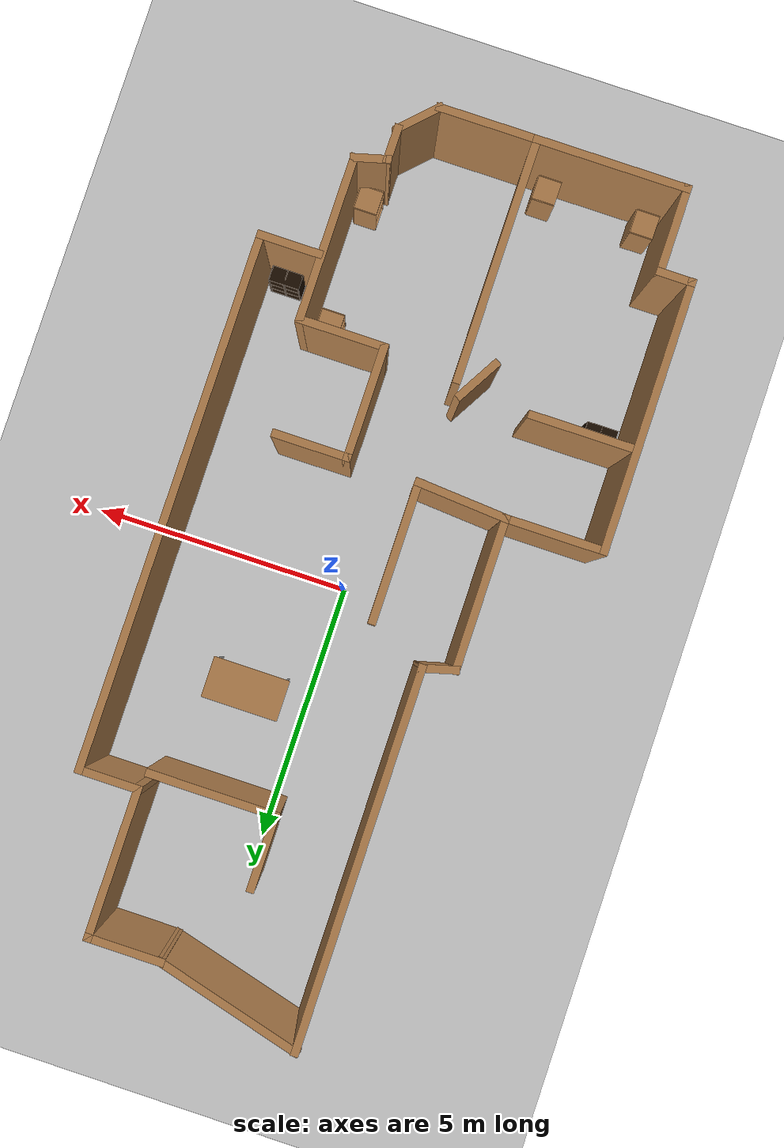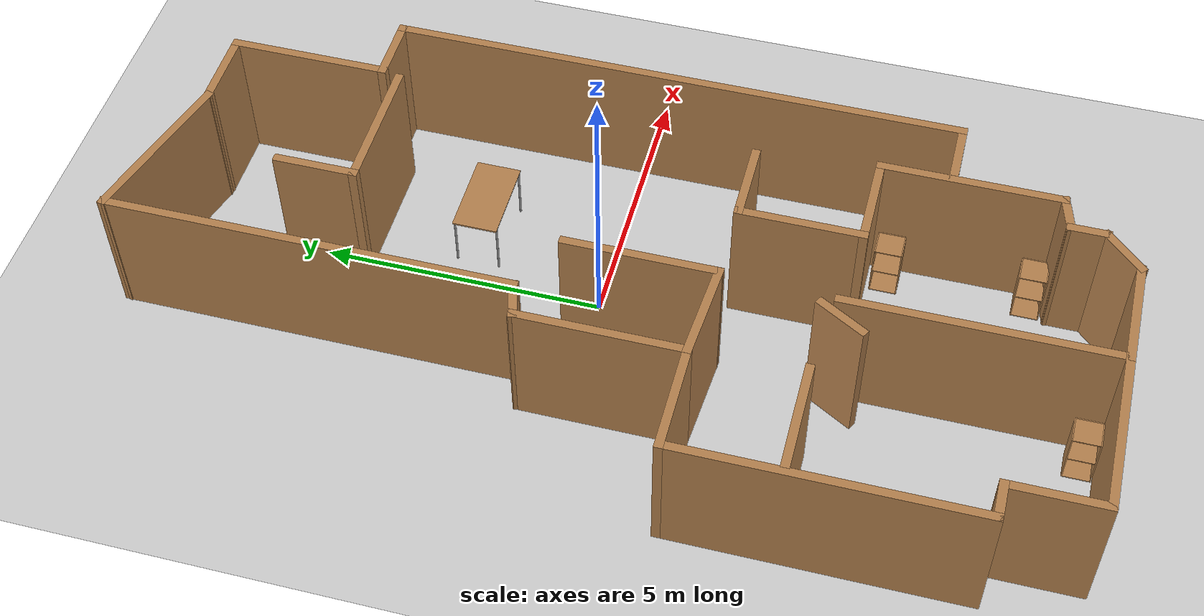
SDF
<sdf version="1.6">
 <world name="default">
  <light name="sun" type="directional">
   <pose>0 0 10 0 -0 0</pose>
   <diffuse>0.8 0.8 0.8 1</diffuse>
   <specular>0.2 0.2 0.2 1</specular>
   <attenuation>
    <range>1000</range>
    <constant>0.9</constant>
    <linear>0.01</linear>
    <quadratic>0.001</quadratic>
   </attenuation>
   <direction>-0.5 0.1 -0.9</direction>
  </light>
  <model name="ground_plane">
   <static>1</static>
   <link name="link">
    <collision name="collision">
     <geometry><plane><normal>0 0 1</normal><size>100 100</size></plane></geometry>
     <surface>
      <contact><collide_bitmask>65535</collide_bitmask></contact>
      <friction><ode><mu>100</mu><mu2>50</mu2></ode></friction>
     </surface>
    </collision>
    <visual name="visual">
     <cast_shadows>0</cast_shadows>
     <geometry><plane><normal>0 0 1</normal><size>100 100</size></plane></geometry>
     <material>
      <script><uri>file://media/materials/scripts/gazebo.material</uri><name>Gazebo/Grey</name></script>
     </material>
    </visual>
   </link>
  </model>
  <gravity>0 0 -9.8</gravity>
  <magnetic_field>6e-06 2.3e-05 -4.2e-05</magnetic_field>
  <atmosphere type="adiabatic"/>
  <physics name="default_physics" default="0" type="ode">
   <max_step_size>0.001</max_step_size>
   <real_time_factor>1</real_time_factor>
   <real_time_update_rate>1000</real_time_update_rate>
  </physics>
  <scene><ambient>0.4 0.4 0.4 1</ambient><background>0.7 0.7 0.7 1</background><shadows>1</shadows></scene>
  <audio><device>default</device></audio>
  <spherical_coordinates>
   <surface_model>EARTH_WGS84</surface_model>
   <latitude_deg>0</latitude_deg>
   <longitude_deg>0</longitude_deg>
   <elevation>0</elevation>
   <heading_deg>0</heading_deg>
  </spherical_coordinates>
  <model name="map_43">
   <pose>-0.422453 -0.385231 0 0 -0 0</pose>
   <link name="Wall_10">
    <collision name="Wall_10_Collision">
     <geometry><box><size>1.75 0.15 2.5</size></box></geometry>
     <pose>0 0 1.25 0 -0 0</pose>
    </collision>
    <visual name="Wall_10_Visual">
     <pose>0 0 1.25 0 -0 0</pose>
     <geometry><box><size>1.75 0.15 2.5</size></box></geometry>
     <material>
      <script><uri>file://media/materials/scripts/gazebo.material</uri><name>Gazebo/Wood</name></script>
      <ambient>1 1 1 1</ambient>
     </material>
     <meta><layer>0</layer></meta>
    </visual>
    <pose>-3.21622 -7.59554 0 0 -0 -1.5708</pose>
   </link>
   <link name="Wall_11">
    <collision name="Wall_11_Collision">
     <geometry><box><size>3 0.15 2.5</size></box></geometry>
     <pose>0 0 1.25 0 -0 0</pose>
    </collision>
    <visual name="Wall_11_Visual">
     <pose>0 0 1.25 0 -0 0</pose>
     <geometry><box><size>3 0.15 2.5</size></box></geometry>
     <material>
      <script><uri>file://media/materials/scripts/gazebo.material</uri><name>Gazebo/Wood</name></script>
      <ambient>1 1 1 1</ambient>
     </material>
     <meta><layer>0</layer></meta>
    </visual>
    <pose>-1.79122 -8.39554 0 0 -0 0</pose>
   </link>
   <link name="Wall_12">
    <collision name="Wall_12_Collision">
     <geometry><box><size>4.75 0.15 2.5</size></box></geometry>
     <pose>0 0 1.25 0 -0 0</pose>
    </collision>
    <visual name="Wall_12_Visual">
     <pose>0 0 1.25 0 -0 0</pose>
     <geometry><box><size>4.75 0.15 2.5</size></box></geometry>
     <material>
      <script><uri>file://media/materials/scripts/gazebo.material</uri><name>Gazebo/Wood</name></script>
      <ambient>1 1 1 1</ambient>
     </material>
     <meta><layer>0</layer></meta>
    </visual>
    <pose>-0.366222 -6.09554 0 0 -0 1.5708</pose>
   </link>
   <link name="Wall_14">
    <collision name="Wall_14_Collision">
     <geometry><box><size>2 0.15 2.5</size></box></geometry>
     <pose>0 0 1.25 0 -0 0</pose>
    </collision>
    <visual name="Wall_14_Visual">
     <pose>0 0 1.25 0 -0 0</pose>
     <geometry><box><size>2 0.15 2.5</size></box></geometry>
     <material>
      <script><uri>file://media/materials/scripts/gazebo.material</uri><name>Gazebo/Wood</name></script>
      <ambient>1 1 1 1</ambient>
     </material>
     <meta><layer>0</layer></meta>
    </visual>
    <pose>0.558778 -8.39554 0 0 -0 0</pose>
   </link>
   <link name="Wall_15">
    <collision name="Wall_15_Collision">
     <geometry><box><size>1 0.15 2.5</size></box></geometry>
     <pose>0 0 1.25 0 -0 0</pose>
    </collision>
    <visual name="Wall_15_Visual">
     <pose>0 0 1.25 0 -0 0</pose>
     <geometry><box><size>1 0.15 2.5</size></box></geometry>
     <material>
      <script><uri>file://media/materials/scripts/gazebo.material</uri><name>Gazebo/Wood</name></script>
      <ambient>1 1 1 1</ambient>
     </material>
     <meta><layer>0</layer></meta>
    </visual>
    <pose>1.7843 -8.09502 0 0 -0 0.785398</pose>
   </link>
   <link name="Wall_16">
    <collision name="Wall_16_Collision">
     <geometry><box><size>0.75 0.15 2.5</size></box></geometry>
     <pose>0 0 1.25 0 -0 0</pose>
    </collision>
    <visual name="Wall_16_Visual">
     <pose>0 0 1.25 0 -0 0</pose>
     <geometry><box><size>0.75 0.15 2.5</size></box></geometry>
     <material>
      <script><uri>file://media/materials/scripts/gazebo.material</uri><name>Gazebo/Wood</name></script>
      <ambient>1 1 1 1</ambient>
     </material>
     <meta><layer>0</layer></meta>
    </visual>
    <pose>2.08482 -7.4945 0 0 -0 1.5708</pose>
   </link>
   <link name="Wall_17">
    <collision name="Wall_17_Collision">
     <geometry><box><size>0.75 0.15 2.5</size></box></geometry>
     <pose>0 0 1.25 0 -0 0</pose>
    </collision>
    <visual name="Wall_17_Visual">
     <pose>0 0 1.25 0 -0 0</pose>
     <geometry><box><size>0.75 0.15 2.5</size></box></geometry>
     <material>
      <script><uri>file://media/materials/scripts/gazebo.material</uri><name>Gazebo/Wood</name></script>
      <ambient>1 1 1 1</ambient>
     </material>
     <meta><layer>0</layer></meta>
    </visual>
    <pose>2.3746 -7.11685 0 0 -0 0.261799</pose>
   </link>
   <link name="Wall_18">
    <collision name="Wall_18_Collision">
     <geometry><box><size>3.25 0.15 2.5</size></box></geometry>
     <pose>0 0 1.25 0 -0 0</pose>
    </collision>
    <visual name="Wall_18_Visual">
     <pose>0 0 1.25 0 -0 0</pose>
     <geometry><box><size>3.25 0.15 2.5</size></box></geometry>
     <material>
      <script><uri>file://media/materials/scripts/gazebo.material</uri><name>Gazebo/Wood</name></script>
      <ambient>1 1 1 1</ambient>
     </material>
     <meta><layer>0</layer></meta>
    </visual>
    <pose>2.66437 -5.48921 0 0 -0 1.5708</pose>
   </link>
   <link name="Wall_19">
    <collision name="Wall_19_Collision">
     <geometry><box><size>1.75 0.15 2.5</size></box></geometry>
     <pose>0 0 1.25 0 -0 0</pose>
    </collision>
    <visual name="Wall_19_Visual">
     <pose>0 0 1.25 0 -0 0</pose>
     <geometry><box><size>1.75 0.15 2.5</size></box></geometry>
     <material>
      <script><uri>file://media/materials/scripts/gazebo.material</uri><name>Gazebo/Wood</name></script>
      <ambient>1 1 1 1</ambient>
     </material>
     <meta><layer>0</layer></meta>
    </visual>
    <pose>1.86437 -3.93921 0 0 -0 3.14159</pose>
   </link>
   <link name="Wall_2">
    <collision name="Wall_2_Collision">
     <geometry><box><size>1.5 0.15 2.5</size></box></geometry>
     <pose>0 0 1.25 0 -0 0</pose>
    </collision>
    <visual name="Wall_2_Visual">
     <pose>0 0 1.25 0 -0 0</pose>
     <geometry><box><size>1.5 0.15 2.5</size></box></geometry>
     <material>
      <script><uri>file://media/materials/scripts/gazebo.material</uri><name>Gazebo/Wood</name></script>
      <ambient>1 1 1 1</ambient>
     </material>
     <meta><layer>0</layer></meta>
    </visual>
    <pose>2.04122 7.67212 0 0 -0 3.14159</pose>
   </link>
   <link name="Wall_21">
    <collision name="Wall_21_Collision">
     <geometry><box><size>1.25 0.15 2.5</size></box></geometry>
     <pose>0 0 1.25 0 -0 0</pose>
    </collision>
    <visual name="Wall_21_Visual">
     <pose>0 0 1.25 0 -0 0</pose>
     <geometry><box><size>1.25 0.15 2.5</size></box></geometry>
     <material>
      <script><uri>file://media/materials/scripts/gazebo.material</uri><name>Gazebo/Wood</name></script>
      <ambient>1 1 1 1</ambient>
     </material>
     <meta><layer>0</layer></meta>
    </visual>
    <pose>3.26622 -5.16848 0 0 -0 0</pose>
   </link>
   <link name="Wall_22">
    <collision name="Wall_22_Collision">
     <geometry><box><size>10.25 0.15 2.5</size></box></geometry>
     <pose>0 0 1.25 0 -0 0</pose>
    </collision>
    <visual name="Wall_22_Visual">
     <pose>0 0 1.25 0 -0 0</pose>
     <geometry><box><size>10.25 0.15 2.5</size></box></geometry>
     <material>
      <script><uri>file://media/materials/scripts/gazebo.material</uri><name>Gazebo/Wood</name></script>
      <ambient>1 1 1 1</ambient>
     </material>
     <meta><layer>0</layer></meta>
    </visual>
    <pose>3.81622 -0.118484 0 0 -0 1.5708</pose>
   </link>
   <link name="Wall_23">
    <collision name="Wall_23_Collision">
     <geometry><box><size>1.25 0.15 2.5</size></box></geometry>
     <pose>0 0 1.25 0 -0 0</pose>
    </collision>
    <visual name="Wall_23_Visual">
     <pose>0 0 1.25 0 -0 0</pose>
     <geometry><box><size>1.25 0.15 2.5</size></box></geometry>
     <material>
      <script><uri>file://media/materials/scripts/gazebo.material</uri><name>Gazebo/Wood</name></script>
      <ambient>1 1 1 1</ambient>
     </material>
     <meta><layer>0</layer></meta>
    </visual>
    <pose>3.26622 4.93152 0 0 -0 3.14159</pose>
   </link>
   <link name="Wall_24">
    <collision name="Wall_24_Collision">
     <geometry><box><size>2.8906 0.15 2.5</size></box></geometry>
     <pose>0 0 1.25 0 -0 0</pose>
    </collision>
    <visual name="Wall_24_Visual">
     <pose>0 0 1.25 0 -0 0</pose>
     <geometry><box><size>2.8906 0.15 2.5</size></box></geometry>
     <material>
      <script><uri>file://media/materials/scripts/gazebo.material</uri><name>Gazebo/Wood</name></script>
      <ambient>1 1 1 1</ambient>
     </material>
     <meta><layer>0</layer></meta>
    </visual>
    <pose>2.71622 6.30182 0 0 -0 1.5708</pose>
   </link>
   <link name="Wall_26">
    <collision name="Wall_26_Collision">
     <geometry><box><size>2 0.15 2.5</size></box></geometry>
     <pose>0 0 1.25 0 -0 0</pose>
    </collision>
    <visual name="Wall_26_Visual">
     <pose>0 0 1.25 0 -0 0</pose>
     <geometry><box><size>2 0.15 2.5</size></box></geometry>
     <material>
      <script><uri>file://media/materials/scripts/gazebo.material</uri><name>Gazebo/Wood</name></script>
      <ambient>1 1 1 1</ambient>
     </material>
     <meta><layer>0</layer></meta>
    </visual>
    <pose>-2.76117 -3.60543 0 0 -0 0</pose>
   </link>
   <link name="Wall_28">
    <collision name="Wall_28_Collision">
     <geometry><box><size>2.5 0.15 2.5</size></box></geometry>
     <pose>0 0 1.25 0 -0 0</pose>
    </collision>
    <visual name="Wall_28_Visual">
     <pose>0 0 1.25 0 -0 0</pose>
     <geometry><box><size>2.5 0.15 2.5</size></box></geometry>
     <material>
      <script><uri>file://media/materials/scripts/gazebo.material</uri><name>Gazebo/Wood</name></script>
      <ambient>1 1 1 1</ambient>
     </material>
     <meta><layer>0</layer></meta>
    </visual>
    <pose>1.4362 4.60239 0 0 -0 3.14159</pose>
   </link>
   <link name="Wall_29">
    <collision name="Wall_29_Collision">
     <geometry><box><size>1.5 0.15 2.5</size></box></geometry>
     <pose>0 0 1.25 0 -0 0</pose>
    </collision>
    <visual name="Wall_29_Visual">
     <pose>0 0 1.25 0 -0 0</pose>
     <geometry><box><size>1.5 0.15 2.5</size></box></geometry>
     <material>
      <script><uri>file://media/materials/scripts/gazebo.material</uri><name>Gazebo/Wood</name></script>
      <ambient>1 1 1 1</ambient>
     </material>
     <meta><layer>0</layer></meta>
    </visual>
    <pose>0.261205 5.27739 0 0 -0 1.5708</pose>
   </link>
   <link name="Wall_3">
    <collision name="Wall_3_Collision">
     <geometry><box><size>3 0.15 2.5</size></box></geometry>
     <pose>0 0 1.25 0 -0 0</pose>
    </collision>
    <visual name="Wall_3_Visual">
     <pose>0 0 1.25 0 -0 0</pose>
     <geometry><box><size>3 0.15 2.5</size></box></geometry>
     <material>
      <script><uri>file://media/materials/scripts/gazebo.material</uri><name>Gazebo/Wood</name></script>
      <ambient>1 1 1 1</ambient>
     </material>
     <meta><layer>0</layer></meta>
    </visual>
    <pose>-0.010222 8.04093 0 0 -0 2.87979</pose>
   </link>
   <link name="Wall_31">
    <collision name="Wall_31_Collision">
     <geometry><box><size>2.25 0.15 2.5</size></box></geometry>
     <pose>0 0 1.25 0 -0 0</pose>
    </collision>
    <visual name="Wall_31_Visual">
     <pose>0 0 1.25 0 -0 0</pose>
     <geometry><box><size>2.25 0.15 2.5</size></box></geometry>
     <material>
      <script><uri>file://media/materials/scripts/gazebo.material</uri><name>Gazebo/Wood</name></script>
      <ambient>1 1 1 1</ambient>
     </material>
     <meta><layer>0</layer></meta>
    </visual>
    <pose>1.06437 -2.88921 0 0 -0 1.5708</pose>
   </link>
   <link name="Wall_32">
    <collision name="Wall_32_Collision">
     <geometry><box><size>1.5 0.15 2.5</size></box></geometry>
     <pose>0 0 1.25 0 -0 0</pose>
    </collision>
    <visual name="Wall_32_Visual">
     <pose>0 0 1.25 0 -0 0</pose>
     <geometry><box><size>1.5 0.15 2.5</size></box></geometry>
     <material>
      <script><uri>file://media/materials/scripts/gazebo.material</uri><name>Gazebo/Wood</name></script>
      <ambient>1 1 1 1</ambient>
     </material>
     <meta><layer>0</layer></meta>
    </visual>
    <pose>1.73937 -1.83921 0 0 -0 0</pose>
   </link>
   <link name="Wall_34">
    <collision name="Wall_34_Collision">
     <geometry><box><size>2.75 0.15 2.5</size></box></geometry>
     <pose>0 0 1.25 0 -0 0</pose>
    </collision>
    <visual name="Wall_34_Visual">
     <pose>0 0 1.25 0 -0 0</pose>
     <geometry><box><size>2.75 0.15 2.5</size></box></geometry>
     <material>
      <script><uri>file://media/materials/scripts/gazebo.material</uri><name>Gazebo/Wood</name></script>
      <ambient>1 1 1 1</ambient>
     </material>
     <meta><layer>0</layer></meta>
    </visual>
    <pose>-0.289835 -0.518495 0 0 -0 -1.5708</pose>
   </link>
   <link name="Wall_35">
    <collision name="Wall_35_Collision">
     <geometry><box><size>1.83089 0.15 2.5</size></box></geometry>
     <pose>0 0 1.25 0 -0 0</pose>
    </collision>
    <visual name="Wall_35_Visual">
     <pose>0 0 1.25 0 -0 0</pose>
     <geometry><box><size>1.83089 0.15 2.5</size></box></geometry>
     <material>
      <script><uri>file://media/materials/scripts/gazebo.material</uri><name>Gazebo/Wood</name></script>
      <ambient>1 1 1 1</ambient>
     </material>
     <meta><layer>0</layer></meta>
    </visual>
    <pose>-1.12803 -1.75702 0 0 -0 3.06838</pose>
   </link>
   <link name="Wall_38">
    <collision name="Wall_38_Collision">
     <geometry><box><size>1 0.15 2.5</size></box></geometry>
     <pose>0 0 1.25 0 -0 0</pose>
    </collision>
    <visual name="Wall_38_Visual">
     <pose>0 0 1.25 0 -0 0</pose>
     <geometry><box><size>1 0.15 2.5</size></box></geometry>
     <material>
      <script><uri>file://media/materials/scripts/gazebo.material</uri><name>Gazebo/Wood</name></script>
      <ambient>1 1 1 1</ambient>
     </material>
     <meta><layer>0</layer></meta>
    </visual>
    <pose>-0.714606 -3.90274 0 0 -0 -2.0944</pose>
   </link>
   <link name="Wall_4">
    <collision name="Wall_4_Collision">
     <geometry><box><size>7.25 0.15 2.5</size></box></geometry>
     <pose>0 0 1.25 0 -0 0</pose>
    </collision>
    <visual name="Wall_4_Visual">
     <pose>0 0 1.25 0 -0 0</pose>
     <geometry><box><size>7.25 0.15 2.5</size></box></geometry>
     <material>
      <script><uri>file://media/materials/scripts/gazebo.material</uri><name>Gazebo/Wood</name></script>
      <ambient>1 1 1 1</ambient>
     </material>
     <meta><layer>0</layer></meta>
    </visual>
    <pose>-1.38667 4.85975 0 0 -0 -1.5708</pose>
   </link>
   <link name="Wall_5">
    <collision name="Wall_5_Collision">
     <geometry><box><size>0.75 0.15 2.5</size></box></geometry>
     <pose>0 0 1.25 0 -0 0</pose>
    </collision>
    <visual name="Wall_5_Visual">
     <pose>0 0 1.25 0 -0 0</pose>
     <geometry><box><size>0.75 0.15 2.5</size></box></geometry>
     <material>
      <script><uri>file://media/materials/scripts/gazebo.material</uri><name>Gazebo/Wood</name></script>
      <ambient>1 1 1 1</ambient>
     </material>
     <meta><layer>0</layer></meta>
    </visual>
    <pose>-1.67644 1.23211 0 0 -0 -2.87979</pose>
   </link>
   <link name="Wall_6">
    <collision name="Wall_6_Collision">
     <geometry><box><size>3 0.15 2.5</size></box></geometry>
     <pose>0 0 1.25 0 -0 0</pose>
    </collision>
    <visual name="Wall_6_Visual">
     <pose>0 0 1.25 0 -0 0</pose>
     <geometry><box><size>3 0.15 2.5</size></box></geometry>
     <material>
      <script><uri>file://media/materials/scripts/gazebo.material</uri><name>Gazebo/Wood</name></script>
      <ambient>1 1 1 1</ambient>
     </material>
     <meta><layer>0</layer></meta>
    </visual>
    <pose>-1.96622 -0.270541 0 0 -0 -1.5708</pose>
   </link>
   <link name="Wall_7">
    <collision name="Wall_7_Collision">
     <geometry><box><size>2 0.15 2.5</size></box></geometry>
     <pose>0 0 1.25 0 -0 0</pose>
    </collision>
    <visual name="Wall_7_Visual">
     <pose>0 0 1.25 0 -0 0</pose>
     <geometry><box><size>2 0.15 2.5</size></box></geometry>
     <material>
      <script><uri>file://media/materials/scripts/gazebo.material</uri><name>Gazebo/Wood</name></script>
      <ambient>1 1 1 1</ambient>
     </material>
     <meta><layer>0</layer></meta>
    </visual>
    <pose>-2.89122 -1.69554 0 0 -0 3.14159</pose>
   </link>
   <link name="Wall_8">
    <collision name="Wall_8_Collision">
     <geometry><box><size>5.25 0.15 2.5</size></box></geometry>
     <pose>0 0 1.25 0 -0 0</pose>
    </collision>
    <visual name="Wall_8_Visual">
     <pose>0 0 1.25 0 -0 0</pose>
     <geometry><box><size>5.25 0.15 2.5</size></box></geometry>
     <material>
      <script><uri>file://media/materials/scripts/gazebo.material</uri><name>Gazebo/Wood</name></script>
      <ambient>1 1 1 1</ambient>
     </material>
     <meta><layer>0</layer></meta>
    </visual>
    <pose>-3.81622 -4.24554 0 0 -0 -1.5708</pose>
   </link>
   <link name="Wall_9">
    <collision name="Wall_9_Collision">
     <geometry><box><size>0.75 0.15 2.5</size></box></geometry>
     <pose>0 0 1.25 0 -0 0</pose>
    </collision>
    <visual name="Wall_9_Visual">
     <pose>0 0 1.25 0 -0 0</pose>
     <geometry><box><size>0.75 0.15 2.5</size></box></geometry>
     <material>
      <script><uri>file://media/materials/scripts/gazebo.material</uri><name>Gazebo/Wood</name></script>
      <ambient>1 1 1 1</ambient>
     </material>
     <meta><layer>0</layer></meta>
    </visual>
    <pose>-3.51622 -6.79554 0 0 -0 0</pose>
   </link>
   <static>1</static>
  </model>
  <model name="table">
   <static>1</static>
   <link name="link">
    <collision name="surface">
     <pose>0 0 1 0 -0 0</pose>
     <geometry><box><size>1.5 0.8 0.03</size></box></geometry>
     <surface><friction><ode><mu>0.6</mu><mu2>0.6</mu2></ode></friction></surface>
    </collision>
    <visual name="visual1">
     <pose>0 0 1 0 -0 0</pose>
     <geometry><box><size>1.5 0.8 0.03</size></box></geometry>
     <material>
      <script><uri>file://media/materials/scripts/gazebo.material</uri><name>Gazebo/Wood</name></script>
     </material>
    </visual>
    <collision name="front_left_leg">
     <pose>0.68 0.38 0.5 0 -0 0</pose>
     <geometry><cylinder><radius>0.02</radius><length>1</length></cylinder></geometry>
    </collision>
    <visual name="front_left_leg">
     <pose>0.68 0.38 0.5 0 -0 0</pose>
     <geometry><cylinder><radius>0.02</radius><length>1</length></cylinder></geometry>
     <material>
      <script><uri>file://media/materials/scripts/gazebo.material</uri><name>Gazebo/Grey</name></script>
     </material>
    </visual>
    <collision name="front_right_leg">
     <pose>0.68 -0.38 0.5 0 -0 0</pose>
     <geometry><cylinder><radius>0.02</radius><length>1</length></cylinder></geometry>
    </collision>
    <visual name="front_right_leg">
     <pose>0.68 -0.38 0.5 0 -0 0</pose>
     <geometry><cylinder><radius>0.02</radius><length>1</length></cylinder></geometry>
     <material>
      <script><uri>file://media/materials/scripts/gazebo.material</uri><name>Gazebo/Grey</name></script>
     </material>
    </visual>
    <collision name="back_right_leg">
     <pose>-0.68 -0.38 0.5 0 -0 0</pose>
     <geometry><cylinder><radius>0.02</radius><length>1</length></cylinder></geometry>
    </collision>
    <visual name="back_right_leg">
     <pose>-0.68 -0.38 0.5 0 -0 0</pose>
     <geometry><cylinder><radius>0.02</radius><length>1</length></cylinder></geometry>
     <material>
      <script><uri>file://media/materials/scripts/gazebo.material</uri><name>Gazebo/Grey</name></script>
     </material>
    </visual>
    <collision name="back_left_leg">
     <pose>-0.68 0.38 0.5 0 -0 0</pose>
     <geometry><cylinder><radius>0.02</radius><length>1</length></cylinder></geometry>
    </collision>
    <visual name="back_left_leg">
     <pose>-0.68 0.38 0.5 0 -0 0</pose>
     <geometry><cylinder><radius>0.02</radius><length>1</length></cylinder></geometry>
     <material>
      <script><uri>file://media/materials/scripts/gazebo.material</uri><name>Gazebo/Grey</name></script>
     </material>
    </visual>
   </link>
   <pose>1.14726 2.35847 0 0 -0 0</pose>
  </model>
  <model name="6_Cube_StorageE">
   <link name="Wall_0">
    <pose>0 0 0.01 0 -0 0</pose>
    <inertial>
     <mass>1.6201</mass>
     <inertia><ixx>0.0119</ixx><iyy>0.0631</iyy><izz>0.0513</izz><ixy>0</ixy><ixz>0</ixz><iyz>0</iyz></inertia>
    </inertial>
    <collision name="Wall_0_Collision"><geometry><box><size>0.616 0.296 0.02</size></box></geometry></collision>
    <visual name="Wall_0_Visual">
     <geometry><box><size>0.616 0.296 0.02</size></box></geometry>
     <material>
      <script><uri>file://media/materials/scripts/gazebo.material</uri><name>Gazebo/Grey</name></script>
      <ambient>0.105882 0.0509804 0 1</ambient>
     </material>
    </visual>
   </link>
   <joint name="0_2" type="fixed">
    <pose>-0.308 0 0 0 -0 0</pose>
    <parent>Wall_2</parent>
    <child>Wall_0</child>
    <axis>
     <xyz>1 0 0</xyz>
     <use_parent_model_frame>0</use_parent_model_frame>
     <limit><lower>-1e+16</lower><upper>1e+16</upper></limit>
    </axis>
   </joint>
   <joint name="0_12" type="fixed">
    <parent>Wall_12</parent>
    <child>Wall_0</child>
    <axis>
     <xyz>0 0 1</xyz>
     <use_parent_model_frame>0</use_parent_model_frame>
     <limit><lower>-1e+16</lower><upper>1e+16</upper></limit>
    </axis>
   </joint>
   <joint name="0_4" type="fixed">
    <pose>0.308 0 0 0 -0 0</pose>
    <parent>Wall_4</parent>
    <child>Wall_0</child>
    <axis>
     <xyz>1 0 0</xyz>
     <use_parent_model_frame>0</use_parent_model_frame>
     <limit><lower>-1e+16</lower><upper>1e+16</upper></limit>
    </axis>
   </joint>
   <link name="Wall_10">
    <pose>0 0 0.61 0 -0 0</pose>
    <inertial>
     <mass>1.6201</mass>
     <inertia><ixx>0.0119</ixx><iyy>0.0631</iyy><izz>0.0513</izz><ixy>0</ixy><ixz>0</ixz><iyz>0</iyz></inertia>
    </inertial>
    <collision name="Wall_10_Collision"><geometry><box><size>0.616 0.296 0.02</size></box></geometry></collision>
    <visual name="Wall_10_Visual">
     <geometry><box><size>0.616 0.296 0.02</size></box></geometry>
     <material>
      <script><uri>file://media/materials/scripts/gazebo.material</uri><name>Gazebo/Grey</name></script>
      <ambient>0.105882 0.0509804 0 1</ambient>
     </material>
    </visual>
   </link>
   <joint name="10_2" type="fixed">
    <pose>-0.308 0 0 0 -0 0</pose>
    <parent>Wall_2</parent>
    <child>Wall_10</child>
    <axis>
     <xyz>1 0 0</xyz>
     <use_parent_model_frame>0</use_parent_model_frame>
     <limit><lower>-1e+16</lower><upper>1e+16</upper></limit>
    </axis>
   </joint>
   <joint name="10_12" type="fixed">
    <parent>Wall_12</parent>
    <child>Wall_10</child>
    <axis>
     <xyz>0 0 1</xyz>
     <use_parent_model_frame>0</use_parent_model_frame>
     <limit><lower>-1e+16</lower><upper>1e+16</upper></limit>
    </axis>
   </joint>
   <joint name="10_4" type="fixed">
    <pose>0.308 0 0 0 -0 0</pose>
    <parent>Wall_4</parent>
    <child>Wall_10</child>
    <axis>
     <xyz>1 0 0</xyz>
     <use_parent_model_frame>0</use_parent_model_frame>
     <limit><lower>-1e+16</lower><upper>1e+16</upper></limit>
    </axis>
   </joint>
   <link name="Wall_12">
    <pose>0 0 0.4575 0 -0 0</pose>
    <inertial>
     <mass>2.4065</mass>
     <inertia><ixx>0.0177</ixx><iyy>0.1855</iyy><izz>0.168</izz><ixy>0</ixy><ixz>0</ixz><iyz>0</iyz></inertia>
    </inertial>
    <collision name="Wall_12_Collision"><geometry><box><size>0.02 0.296 0.915</size></box></geometry></collision>
    <visual name="Wall_12_Visual">
     <geometry><box><size>0.02 0.296 0.915</size></box></geometry>
     <material>
      <script><uri>file://media/materials/scripts/gazebo.material</uri><name>Gazebo/Grey</name></script>
      <ambient>0.105882 0.0509804 0 1</ambient>
     </material>
    </visual>
   </link>
   <link name="Wall_2">
    <pose>-0.298 0 0.4575 0 -0 0</pose>
    <inertial>
     <mass>2.4065</mass>
     <inertia><ixx>0.0177</ixx><iyy>0.1855</iyy><izz>0.168</izz><ixy>0</ixy><ixz>0</ixz><iyz>0</iyz></inertia>
    </inertial>
    <collision name="Wall_2_Collision"><geometry><box><size>0.02 0.296 0.915</size></box></geometry></collision>
    <visual name="Wall_2_Visual">
     <geometry><box><size>0.02 0.296 0.915</size></box></geometry>
     <material>
      <script><uri>file://media/materials/scripts/gazebo.material</uri><name>Gazebo/Grey</name></script>
      <ambient>0.105882 0.0509804 0 1</ambient>
     </material>
    </visual>
   </link>
   <link name="Wall_4">
    <pose>0.298 0 0.4575 0 -0 0</pose>
    <inertial>
     <mass>2.4065</mass>
     <inertia><ixx>0.0177</ixx><iyy>0.1855</iyy><izz>0.168</izz><ixy>0</ixy><ixz>0</ixz><iyz>0</iyz></inertia>
    </inertial>
    <collision name="Wall_4_Collision"><geometry><box><size>0.02 0.296 0.915</size></box></geometry></collision>
    <visual name="Wall_4_Visual">
     <geometry><box><size>0.02 0.296 0.915</size></box></geometry>
     <material>
      <script><uri>file://media/materials/scripts/gazebo.material</uri><name>Gazebo/Grey</name></script>
      <ambient>0.105882 0.0509804 0 1</ambient>
     </material>
    </visual>
   </link>
   <link name="Wall_6">
    <pose>0 0 0.905 0 -0 0</pose>
    <inertial>
     <mass>1.6201</mass>
     <inertia><ixx>0.0119</ixx><iyy>0.0631</iyy><izz>0.0513</izz><ixy>0</ixy><ixz>0</ixz><iyz>0</iyz></inertia>
    </inertial>
    <collision name="Wall_6_Collision"><geometry><box><size>0.616 0.296 0.02</size></box></geometry></collision>
    <visual name="Wall_6_Visual">
     <geometry><box><size>0.616 0.296 0.02</size></box></geometry>
     <material>
      <script><uri>file://media/materials/scripts/gazebo.material</uri><name>Gazebo/Grey</name></script>
      <ambient>0.105882 0.0509804 0 1</ambient>
     </material>
    </visual>
   </link>
   <joint name="6_2" type="fixed">
    <pose>-0.308 0 0 0 -0 0</pose>
    <parent>Wall_2</parent>
    <child>Wall_6</child>
    <axis>
     <xyz>2 0 0</xyz>
     <use_parent_model_frame>0</use_parent_model_frame>
     <limit><lower>-1e+16</lower><upper>1e+16</upper></limit>
    </axis>
   </joint>
   <joint name="6_12" type="fixed">
    <parent>Wall_12</parent>
    <child>Wall_6</child>
    <axis>
     <xyz>0 0 1</xyz>
     <use_parent_model_frame>0</use_parent_model_frame>
     <limit><lower>-1e+16</lower><upper>1e+16</upper></limit>
    </axis>
   </joint>
   <joint name="6_4" type="fixed">
    <pose>0.308 0 0 0 -0 0</pose>
    <parent>Wall_4</parent>
    <child>Wall_6</child>
    <axis>
     <xyz>1 0 0</xyz>
     <use_parent_model_frame>0</use_parent_model_frame>
     <limit><lower>-1e+16</lower><upper>1e+16</upper></limit>
    </axis>
   </joint>
   <link name="Wall_8">
    <pose>0 0 0.305 0 -0 0</pose>
    <inertial>
     <mass>1.6201</mass>
     <inertia><ixx>0.0119</ixx><iyy>0.0631</iyy><izz>0.0513</izz><ixy>0</ixy><ixz>0</ixz><iyz>0</iyz></inertia>
    </inertial>
    <collision name="Wall_8_Collision"><geometry><box><size>0.616 0.296 0.02</size></box></geometry></collision>
    <visual name="Wall_8_Visual">
     <geometry><box><size>0.616 0.296 0.02</size></box></geometry>
     <material>
      <script><uri>file://media/materials/scripts/gazebo.material</uri><name>Gazebo/Grey</name></script>
      <ambient>0.105882 0.0509804 0 1</ambient>
     </material>
    </visual>
   </link>
   <joint name="8_2" type="fixed">
    <pose>-0.308 0 0 0 -0 0</pose>
    <parent>Wall_2</parent>
    <child>Wall_8</child>
    <axis>
     <xyz>1 0 0</xyz>
     <use_parent_model_frame>0</use_parent_model_frame>
     <limit><lower>-1e+16</lower><upper>1e+16</upper></limit>
    </axis>
   </joint>
   <joint name="8_12" type="fixed">
    <parent>Wall_12</parent>
    <child>Wall_8</child>
    <axis>
     <xyz>0 0 1</xyz>
     <use_parent_model_frame>0</use_parent_model_frame>
     <limit><lower>-1e+16</lower><upper>1e+16</upper></limit>
    </axis>
   </joint>
   <joint name="8_4" type="fixed">
    <pose>0.308 0 0 0 -0 0</pose>
    <parent>Wall_4</parent>
    <child>Wall_8</child>
    <axis>
     <xyz>1 0 0</xyz>
     <use_parent_model_frame>0</use_parent_model_frame>
     <limit><lower>-1e+16</lower><upper>1e+16</upper></limit>
    </axis>
   </joint>
   <static>1</static>
   <pose>2.92316 -5.30894 0 0 -0 0</pose>
  </model>
  <model name="cabinet">
   <static>1</static>
   <link name="cabinet_bottom_plate">
    <inertial>
     <pose>0 0 -1 0 -0 0</pose>
     <inertia><ixx>2.05</ixx><ixy>0</ixy><ixz>0</ixz><iyy>2.05</iyy><iyz>0</iyz><izz>2.05</izz></inertia>
     <mass>25</mass>
    </inertial>
    <collision name="cabinet_bottom_plate_geom">
     <pose>0 0 0.01 0 -0 0</pose>
     <geometry><box><size>0.45 0.45 0.02</size></box></geometry>
    </collision>
    <visual name="cabinet_bottom_plate_geom_visual">
     <pose>0 0 0.01 0 -0 0</pose>
     <geometry><box><size>0.45 0.45 0.02</size></box></geometry>
     <material>
      <script><uri>file://media/materials/scripts/gazebo.material</uri><name>Gazebo/Wood</name></script>
     </material>
    </visual>
    <collision name="cabinet_bottom_plate_geom_cabinet_back_plate">
     <pose>0.235 0 0.51 0 -0 0</pose>
     <geometry><box><size>0.02 0.45 1.02</size></box></geometry>
    </collision>
    <visual name="cabinet_bottom_plate_geom_cabinet_back_plate_visual">
     <pose>0.235 0 0.51 0 -0 0</pose>
     <geometry><box><size>0.02 0.45 1.02</size></box></geometry>
     <material>
      <script><uri>file://media/materials/scripts/gazebo.material</uri><name>Gazebo/Wood</name></script>
     </material>
    </visual>
    <collision name="cabinet_bottom_plate_geom_cabinet_left_plate">
     <pose>0 0.235 0.51 0 -0 0</pose>
     <geometry><box><size>0.45 0.02 1.02</size></box></geometry>
    </collision>
    <visual name="cabinet_bottom_plate_geom_cabinet_left_plate_visual">
     <pose>0 0.235 0.51 0 -0 0</pose>
     <geometry><box><size>0.45 0.02 1.02</size></box></geometry>
     <material>
      <script><uri>file://media/materials/scripts/gazebo.material</uri><name>Gazebo/Wood</name></script>
     </material>
    </visual>
    <collision name="cabinet_bottom_plate_geom_cabinet_middle_plate">
     <pose>0 0 0.51 0 -0 0</pose>
     <geometry><box><size>0.45 0.45 0.02</size></box></geometry>
    </collision>
    <visual name="cabinet_bottom_plate_geom_cabinet_middle_plate_visual">
     <pose>0 0 0.51 0 -0 0</pose>
     <geometry><box><size>0.45 0.45 0.02</size></box></geometry>
     <material>
      <script><uri>file://media/materials/scripts/gazebo.material</uri><name>Gazebo/Wood</name></script>
     </material>
    </visual>
    <collision name="cabinet_bottom_plate_geom_cabinet_right_plate">
     <pose>0 -0.235 0.51 0 -0 0</pose>
     <geometry><box><size>0.45 0.02 1.02</size></box></geometry>
    </collision>
    <visual name="cabinet_bottom_plate_geom_cabinet_right_plate_visual">
     <pose>0 -0.235 0.51 0 -0 0</pose>
     <geometry><box><size>0.45 0.02 1.02</size></box></geometry>
     <material>
      <script><uri>file://media/materials/scripts/gazebo.material</uri><name>Gazebo/Wood</name></script>
     </material>
    </visual>
    <collision name="cabinet_bottom_plate_geom_cabinet_top_plate">
     <pose>0 0 1.01 0 -0 0</pose>
     <geometry><box><size>0.45 0.45 0.02</size></box></geometry>
    </collision>
    <visual name="cabinet_bottom_plate_geom_cabinet_top_plate_visual">
     <pose>0 0 1.01 0 -0 0</pose>
     <geometry><box><size>0.45 0.45 0.02</size></box></geometry>
     <material>
      <script><uri>file://media/materials/scripts/gazebo.material</uri><name>Gazebo/Wood</name></script>
     </material>
    </visual>
   </link>
   <pose>1.83607 -4.71511 0 0 -0 0</pose>
  </model>
  <model name="cabinet_0">
   <static>1</static>
   <link name="cabinet_bottom_plate">
    <inertial>
     <pose>0 0 -1 0 -0 0</pose>
     <inertia><ixx>2.05</ixx><ixy>0</ixy><ixz>0</ixz><iyy>2.05</iyy><iyz>0</iyz><izz>2.05</izz></inertia>
     <mass>25</mass>
    </inertial>
    <collision name="cabinet_bottom_plate_geom">
     <pose>0 0 0.01 0 -0 0</pose>
     <geometry><box><size>0.45 0.45 0.02</size></box></geometry>
    </collision>
    <visual name="cabinet_bottom_plate_geom_visual">
     <pose>0 0 0.01 0 -0 0</pose>
     <geometry><box><size>0.45 0.45 0.02</size></box></geometry>
     <material>
      <script><uri>file://media/materials/scripts/gazebo.material</uri><name>Gazebo/Wood</name></script>
     </material>
    </visual>
    <collision name="cabinet_bottom_plate_geom_cabinet_back_plate">
     <pose>0.235 0 0.51 0 -0 0</pose>
     <geometry><box><size>0.02 0.45 1.02</size></box></geometry>
    </collision>
    <visual name="cabinet_bottom_plate_geom_cabinet_back_plate_visual">
     <pose>0.235 0 0.51 0 -0 0</pose>
     <geometry><box><size>0.02 0.45 1.02</size></box></geometry>
     <material>
      <script><uri>file://media/materials/scripts/gazebo.material</uri><name>Gazebo/Wood</name></script>
     </material>
    </visual>
    <collision name="cabinet_bottom_plate_geom_cabinet_left_plate">
     <pose>0 0.235 0.51 0 -0 0</pose>
     <geometry><box><size>0.45 0.02 1.02</size></box></geometry>
    </collision>
    <visual name="cabinet_bottom_plate_geom_cabinet_left_plate_visual">
     <pose>0 0.235 0.51 0 -0 0</pose>
     <geometry><box><size>0.45 0.02 1.02</size></box></geometry>
     <material>
      <script><uri>file://media/materials/scripts/gazebo.material</uri><name>Gazebo/Wood</name></script>
     </material>
    </visual>
    <collision name="cabinet_bottom_plate_geom_cabinet_middle_plate">
     <pose>0 0 0.51 0 -0 0</pose>
     <geometry><box><size>0.45 0.45 0.02</size></box></geometry>
    </collision>
    <visual name="cabinet_bottom_plate_geom_cabinet_middle_plate_visual">
     <pose>0 0 0.51 0 -0 0</pose>
     <geometry><box><size>0.45 0.45 0.02</size></box></geometry>
     <material>
      <script><uri>file://media/materials/scripts/gazebo.material</uri><name>Gazebo/Wood</name></script>
     </material>
    </visual>
    <collision name="cabinet_bottom_plate_geom_cabinet_right_plate">
     <pose>0 -0.235 0.51 0 -0 0</pose>
     <geometry><box><size>0.45 0.02 1.02</size></box></geometry>
    </collision>
    <visual name="cabinet_bottom_plate_geom_cabinet_right_plate_visual">
     <pose>0 -0.235 0.51 0 -0 0</pose>
     <geometry><box><size>0.45 0.02 1.02</size></box></geometry>
     <material>
      <script><uri>file://media/materials/scripts/gazebo.material</uri><name>Gazebo/Wood</name></script>
     </material>
    </visual>
    <collision name="cabinet_bottom_plate_geom_cabinet_top_plate">
     <pose>0 0 1.01 0 -0 0</pose>
     <geometry><box><size>0.45 0.45 0.02</size></box></geometry>
    </collision>
    <visual name="cabinet_bottom_plate_geom_cabinet_top_plate_visual">
     <pose>0 0 1.01 0 -0 0</pose>
     <geometry><box><size>0.45 0.45 0.02</size></box></geometry>
     <material>
      <script><uri>file://media/materials/scripts/gazebo.material</uri><name>Gazebo/Wood</name></script>
     </material>
    </visual>
   </link>
   <pose>1.8801 -7.20248 0 0 -0 0</pose>
  </model>
  <model name="cabinet_1">
   <static>1</static>
   <link name="cabinet_bottom_plate">
    <inertial>
     <pose>0 0 -1 0 -0 0</pose>
     <inertia><ixx>2.05</ixx><ixy>0</ixy><ixz>0</ixz><iyy>2.05</iyy><iyz>0</iyz><izz>2.05</izz></inertia>
     <mass>25</mass>
    </inertial>
    <collision name="cabinet_bottom_plate_geom">
     <pose>0 0 0.01 0 -0 0</pose>
     <geometry><box><size>0.45 0.45 0.02</size></box></geometry>
    </collision>
    <visual name="cabinet_bottom_plate_geom_visual">
     <pose>0 0 0.01 0 -0 0</pose>
     <geometry><box><size>0.45 0.45 0.02</size></box></geometry>
     <material>
      <script><uri>file://media/materials/scripts/gazebo.material</uri><name>Gazebo/Wood</name></script>
     </material>
    </visual>
    <collision name="cabinet_bottom_plate_geom_cabinet_back_plate">
     <pose>0.235 0 0.51 0 -0 0</pose>
     <geometry><box><size>0.02 0.45 1.02</size></box></geometry>
    </collision>
    <visual name="cabinet_bottom_plate_geom_cabinet_back_plate_visual">
     <pose>0.235 0 0.51 0 -0 0</pose>
     <geometry><box><size>0.02 0.45 1.02</size></box></geometry>
     <material>
      <script><uri>file://media/materials/scripts/gazebo.material</uri><name>Gazebo/Wood</name></script>
     </material>
    </visual>
    <collision name="cabinet_bottom_plate_geom_cabinet_left_plate">
     <pose>0 0.235 0.51 0 -0 0</pose>
     <geometry><box><size>0.45 0.02 1.02</size></box></geometry>
    </collision>
    <visual name="cabinet_bottom_plate_geom_cabinet_left_plate_visual">
     <pose>0 0.235 0.51 0 -0 0</pose>
     <geometry><box><size>0.45 0.02 1.02</size></box></geometry>
     <material>
      <script><uri>file://media/materials/scripts/gazebo.material</uri><name>Gazebo/Wood</name></script>
     </material>
    </visual>
    <collision name="cabinet_bottom_plate_geom_cabinet_middle_plate">
     <pose>0 0 0.51 0 -0 0</pose>
     <geometry><box><size>0.45 0.45 0.02</size></box></geometry>
    </collision>
    <visual name="cabinet_bottom_plate_geom_cabinet_middle_plate_visual">
     <pose>0 0 0.51 0 -0 0</pose>
     <geometry><box><size>0.45 0.45 0.02</size></box></geometry>
     <material>
      <script><uri>file://media/materials/scripts/gazebo.material</uri><name>Gazebo/Wood</name></script>
     </material>
    </visual>
    <collision name="cabinet_bottom_plate_geom_cabinet_right_plate">
     <pose>0 -0.235 0.51 0 -0 0</pose>
     <geometry><box><size>0.45 0.02 1.02</size></box></geometry>
    </collision>
    <visual name="cabinet_bottom_plate_geom_cabinet_right_plate_visual">
     <pose>0 -0.235 0.51 0 -0 0</pose>
     <geometry><box><size>0.45 0.02 1.02</size></box></geometry>
     <material>
      <script><uri>file://media/materials/scripts/gazebo.material</uri><name>Gazebo/Wood</name></script>
     </material>
    </visual>
    <collision name="cabinet_bottom_plate_geom_cabinet_top_plate">
     <pose>0 0 1.01 0 -0 0</pose>
     <geometry><box><size>0.45 0.45 0.02</size></box></geometry>
    </collision>
    <visual name="cabinet_bottom_plate_geom_cabinet_top_plate_visual">
     <pose>0 0 1.01 0 -0 0</pose>
     <geometry><box><size>0.45 0.45 0.02</size></box></geometry>
     <material>
      <script><uri>file://media/materials/scripts/gazebo.material</uri><name>Gazebo/Wood</name></script>
     </material>
    </visual>
   </link>
   <pose>-3.2573 -8.41354 0 0 -0 0</pose>
  </model>
  <model name="cabinet_2">
   <static>1</static>
   <link name="cabinet_bottom_plate">
    <inertial>
     <pose>0 0 -1 0 -0 0</pose>
     <inertia><ixx>2.05</ixx><ixy>0</ixy><ixz>0</ixz><iyy>2.05</iyy><iyz>0</iyz><izz>2.05</izz></inertia>
     <mass>25</mass>
    </inertial>
    <collision name="cabinet_bottom_plate_geom">
     <pose>0 0 0.01 0 -0 0</pose>
     <geometry><box><size>0.45 0.45 0.02</size></box></geometry>
    </collision>
    <visual name="cabinet_bottom_plate_geom_visual">
     <pose>0 0 0.01 0 -0 0</pose>
     <geometry><box><size>0.45 0.45 0.02</size></box></geometry>
     <material>
      <script><uri>file://media/materials/scripts/gazebo.material</uri><name>Gazebo/Wood</name></script>
     </material>
    </visual>
    <collision name="cabinet_bottom_plate_geom_cabinet_back_plate">
     <pose>0.235 0 0.51 0 -0 0</pose>
     <geometry><box><size>0.02 0.45 1.02</size></box></geometry>
    </collision>
    <visual name="cabinet_bottom_plate_geom_cabinet_back_plate_visual">
     <pose>0.235 0 0.51 0 -0 0</pose>
     <geometry><box><size>0.02 0.45 1.02</size></box></geometry>
     <material>
      <script><uri>file://media/materials/scripts/gazebo.material</uri><name>Gazebo/Wood</name></script>
     </material>
    </visual>
    <collision name="cabinet_bottom_plate_geom_cabinet_left_plate">
     <pose>0 0.235 0.51 0 -0 0</pose>
     <geometry><box><size>0.45 0.02 1.02</size></box></geometry>
    </collision>
    <visual name="cabinet_bottom_plate_geom_cabinet_left_plate_visual">
     <pose>0 0.235 0.51 0 -0 0</pose>
     <geometry><box><size>0.45 0.02 1.02</size></box></geometry>
     <material>
      <script><uri>file://media/materials/scripts/gazebo.material</uri><name>Gazebo/Wood</name></script>
     </material>
    </visual>
    <collision name="cabinet_bottom_plate_geom_cabinet_middle_plate">
     <pose>0 0 0.51 0 -0 0</pose>
     <geometry><box><size>0.45 0.45 0.02</size></box></geometry>
    </collision>
    <visual name="cabinet_bottom_plate_geom_cabinet_middle_plate_visual">
     <pose>0 0 0.51 0 -0 0</pose>
     <geometry><box><size>0.45 0.45 0.02</size></box></geometry>
     <material>
      <script><uri>file://media/materials/scripts/gazebo.material</uri><name>Gazebo/Wood</name></script>
     </material>
    </visual>
    <collision name="cabinet_bottom_plate_geom_cabinet_right_plate">
     <pose>0 -0.235 0.51 0 -0 0</pose>
     <geometry><box><size>0.45 0.02 1.02</size></box></geometry>
    </collision>
    <visual name="cabinet_bottom_plate_geom_cabinet_right_plate_visual">
     <pose>0 -0.235 0.51 0 -0 0</pose>
     <geometry><box><size>0.45 0.02 1.02</size></box></geometry>
     <material>
      <script><uri>file://media/materials/scripts/gazebo.material</uri><name>Gazebo/Wood</name></script>
     </material>
    </visual>
    <collision name="cabinet_bottom_plate_geom_cabinet_top_plate">
     <pose>0 0 1.01 0 -0 0</pose>
     <geometry><box><size>0.45 0.45 0.02</size></box></geometry>
    </collision>
    <visual name="cabinet_bottom_plate_geom_cabinet_top_plate_visual">
     <pose>0 0 1.01 0 -0 0</pose>
     <geometry><box><size>0.45 0.45 0.02</size></box></geometry>
     <material>
      <script><uri>file://media/materials/scripts/gazebo.material</uri><name>Gazebo/Wood</name></script>
     </material>
    </visual>
   </link>
   <pose>-1.27997 -8.44592 0 0 -0 0</pose>
  </model>
  <model name="6_Cube_StorageE_0">
   <link name="Wall_0">
    <pose>0 0 0.01 0 -0 0</pose>
    <inertial>
     <mass>1.6201</mass>
     <inertia><ixx>0.0119</ixx><iyy>0.0631</iyy><izz>0.0513</izz><ixy>0</ixy><ixz>0</ixz><iyz>0</iyz></inertia>
    </inertial>
    <collision name="Wall_0_Collision"><geometry><box><size>0.616 0.296 0.02</size></box></geometry></collision>
    <visual name="Wall_0_Visual">
     <geometry><box><size>0.616 0.296 0.02</size></box></geometry>
     <material>
      <script><uri>file://media/materials/scripts/gazebo.material</uri><name>Gazebo/Grey</name></script>
      <ambient>0.105882 0.0509804 0 1</ambient>
     </material>
    </visual>
   </link>
   <joint name="0_2" type="fixed">
    <pose>-0.308 0 0 0 -0 0</pose>
    <parent>Wall_2</parent>
    <child>Wall_0</child>
    <axis>
     <xyz>1 0 0</xyz>
     <use_parent_model_frame>0</use_parent_model_frame>
     <limit><lower>-1e+16</lower><upper>1e+16</upper></limit>
    </axis>
   </joint>
   <joint name="0_12" type="fixed">
    <parent>Wall_12</parent>
    <child>Wall_0</child>
    <axis>
     <xyz>0 0 1</xyz>
     <use_parent_model_frame>0</use_parent_model_frame>
     <limit><lower>-1e+16</lower><upper>1e+16</upper></limit>
    </axis>
   </joint>
   <joint name="0_4" type="fixed">
    <pose>0.308 0 0 0 -0 0</pose>
    <parent>Wall_4</parent>
    <child>Wall_0</child>
    <axis>
     <xyz>1 0 0</xyz>
     <use_parent_model_frame>0</use_parent_model_frame>
     <limit><lower>-1e+16</lower><upper>1e+16</upper></limit>
    </axis>
   </joint>
   <link name="Wall_10">
    <pose>0 0 0.61 0 -0 0</pose>
    <inertial>
     <mass>1.6201</mass>
     <inertia><ixx>0.0119</ixx><iyy>0.0631</iyy><izz>0.0513</izz><ixy>0</ixy><ixz>0</ixz><iyz>0</iyz></inertia>
    </inertial>
    <collision name="Wall_10_Collision"><geometry><box><size>0.616 0.296 0.02</size></box></geometry></collision>
    <visual name="Wall_10_Visual">
     <geometry><box><size>0.616 0.296 0.02</size></box></geometry>
     <material>
      <script><uri>file://media/materials/scripts/gazebo.material</uri><name>Gazebo/Grey</name></script>
      <ambient>0.105882 0.0509804 0 1</ambient>
     </material>
    </visual>
   </link>
   <joint name="10_2" type="fixed">
    <pose>-0.308 0 0 0 -0 0</pose>
    <parent>Wall_2</parent>
    <child>Wall_10</child>
    <axis>
     <xyz>1 0 0</xyz>
     <use_parent_model_frame>0</use_parent_model_frame>
     <limit><lower>-1e+16</lower><upper>1e+16</upper></limit>
    </axis>
   </joint>
   <joint name="10_12" type="fixed">
    <parent>Wall_12</parent>
    <child>Wall_10</child>
    <axis>
     <xyz>0 0 1</xyz>
     <use_parent_model_frame>0</use_parent_model_frame>
     <limit><lower>-1e+16</lower><upper>1e+16</upper></limit>
    </axis>
   </joint>
   <joint name="10_4" type="fixed">
    <pose>0.308 0 0 0 -0 0</pose>
    <parent>Wall_4</parent>
    <child>Wall_10</child>
    <axis>
     <xyz>1 0 0</xyz>
     <use_parent_model_frame>0</use_parent_model_frame>
     <limit><lower>-1e+16</lower><upper>1e+16</upper></limit>
    </axis>
   </joint>
   <link name="Wall_12">
    <pose>0 0 0.4575 0 -0 0</pose>
    <inertial>
     <mass>2.4065</mass>
     <inertia><ixx>0.0177</ixx><iyy>0.1855</iyy><izz>0.168</izz><ixy>0</ixy><ixz>0</ixz><iyz>0</iyz></inertia>
    </inertial>
    <collision name="Wall_12_Collision"><geometry><box><size>0.02 0.296 0.915</size></box></geometry></collision>
    <visual name="Wall_12_Visual">
     <geometry><box><size>0.02 0.296 0.915</size></box></geometry>
     <material>
      <script><uri>file://media/materials/scripts/gazebo.material</uri><name>Gazebo/Grey</name></script>
      <ambient>0.105882 0.0509804 0 1</ambient>
     </material>
    </visual>
   </link>
   <link name="Wall_2">
    <pose>-0.298 0 0.4575 0 -0 0</pose>
    <inertial>
     <mass>2.4065</mass>
     <inertia><ixx>0.0177</ixx><iyy>0.1855</iyy><izz>0.168</izz><ixy>0</ixy><ixz>0</ixz><iyz>0</iyz></inertia>
    </inertial>
    <collision name="Wall_2_Collision"><geometry><box><size>0.02 0.296 0.915</size></box></geometry></collision>
    <visual name="Wall_2_Visual">
     <geometry><box><size>0.02 0.296 0.915</size></box></geometry>
     <material>
      <script><uri>file://media/materials/scripts/gazebo.material</uri><name>Gazebo/Grey</name></script>
      <ambient>0.105882 0.0509804 0 1</ambient>
     </material>
    </visual>
   </link>
   <link name="Wall_4">
    <pose>0.298 0 0.4575 0 -0 0</pose>
    <inertial>
     <mass>2.4065</mass>
     <inertia><ixx>0.0177</ixx><iyy>0.1855</iyy><izz>0.168</izz><ixy>0</ixy><ixz>0</ixz><iyz>0</iyz></inertia>
    </inertial>
    <collision name="Wall_4_Collision"><geometry><box><size>0.02 0.296 0.915</size></box></geometry></collision>
    <visual name="Wall_4_Visual">
     <geometry><box><size>0.02 0.296 0.915</size></box></geometry>
     <material>
      <script><uri>file://media/materials/scripts/gazebo.material</uri><name>Gazebo/Grey</name></script>
      <ambient>0.105882 0.0509804 0 1</ambient>
     </material>
    </visual>
   </link>
   <link name="Wall_6">
    <pose>0 0 0.905 0 -0 0</pose>
    <inertial>
     <mass>1.6201</mass>
     <inertia><ixx>0.0119</ixx><iyy>0.0631</iyy><izz>0.0513</izz><ixy>0</ixy><ixz>0</ixz><iyz>0</iyz></inertia>
    </inertial>
    <collision name="Wall_6_Collision"><geometry><box><size>0.616 0.296 0.02</size></box></geometry></collision>
    <visual name="Wall_6_Visual">
     <geometry><box><size>0.616 0.296 0.02</size></box></geometry>
     <material>
      <script><uri>file://media/materials/scripts/gazebo.material</uri><name>Gazebo/Grey</name></script>
      <ambient>0.105882 0.0509804 0 1</ambient>
     </material>
    </visual>
   </link>
   <joint name="6_2" type="fixed">
    <pose>-0.308 0 0 0 -0 0</pose>
    <parent>Wall_2</parent>
    <child>Wall_6</child>
    <axis>
     <xyz>2 0 0</xyz>
     <use_parent_model_frame>0</use_parent_model_frame>
     <limit><lower>-1e+16</lower><upper>1e+16</upper></limit>
    </axis>
   </joint>
   <joint name="6_12" type="fixed">
    <parent>Wall_12</parent>
    <child>Wall_6</child>
    <axis>
     <xyz>0 0 1</xyz>
     <use_parent_model_frame>0</use_parent_model_frame>
     <limit><lower>-1e+16</lower><upper>1e+16</upper></limit>
    </axis>
   </joint>
   <joint name="6_4" type="fixed">
    <pose>0.308 0 0 0 -0 0</pose>
    <parent>Wall_4</parent>
    <child>Wall_6</child>
    <axis>
     <xyz>1 0 0</xyz>
     <use_parent_model_frame>0</use_parent_model_frame>
     <limit><lower>-1e+16</lower><upper>1e+16</upper></limit>
    </axis>
   </joint>
   <link name="Wall_8">
    <pose>0 0 0.305 0 -0 0</pose>
    <inertial>
     <mass>1.6201</mass>
     <inertia><ixx>0.0119</ixx><iyy>0.0631</iyy><izz>0.0513</izz><ixy>0</ixy><ixz>0</ixz><iyz>0</iyz></inertia>
    </inertial>
    <collision name="Wall_8_Collision"><geometry><box><size>0.616 0.296 0.02</size></box></geometry></collision>
    <visual name="Wall_8_Visual">
     <geometry><box><size>0.616 0.296 0.02</size></box></geometry>
     <material>
      <script><uri>file://media/materials/scripts/gazebo.material</uri><name>Gazebo/Grey</name></script>
      <ambient>0.105882 0.0509804 0 1</ambient>
     </material>
    </visual>
   </link>
   <joint name="8_2" type="fixed">
    <pose>-0.308 0 0 0 -0 0</pose>
    <parent>Wall_2</parent>
    <child>Wall_8</child>
    <axis>
     <xyz>1 0 0</xyz>
     <use_parent_model_frame>0</use_parent_model_frame>
     <limit><lower>-1e+16</lower><upper>1e+16</upper></limit>
    </axis>
   </joint>
   <joint name="8_12" type="fixed">
    <parent>Wall_12</parent>
    <child>Wall_8</child>
    <axis>
     <xyz>0 0 1</xyz>
     <use_parent_model_frame>0</use_parent_model_frame>
     <limit><lower>-1e+16</lower><upper>1e+16</upper></limit>
    </axis>
   </joint>
   <joint name="8_4" type="fixed">
    <pose>0.308 0 0 0 -0 0</pose>
    <parent>Wall_4</parent>
    <child>Wall_8</child>
    <axis>
     <xyz>1 0 0</xyz>
     <use_parent_model_frame>0</use_parent_model_frame>
     <limit><lower>-1e+16</lower><upper>1e+16</upper></limit>
    </axis>
   </joint>
   <static>1</static>
   <pose>-3.70991 -4.35397 0 0 -0 0</pose>
  </model>
 </world>
</sdf>
